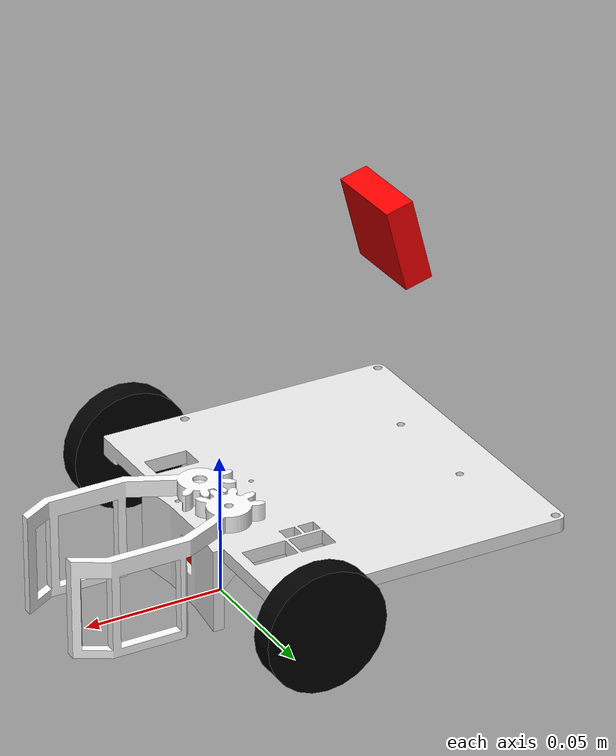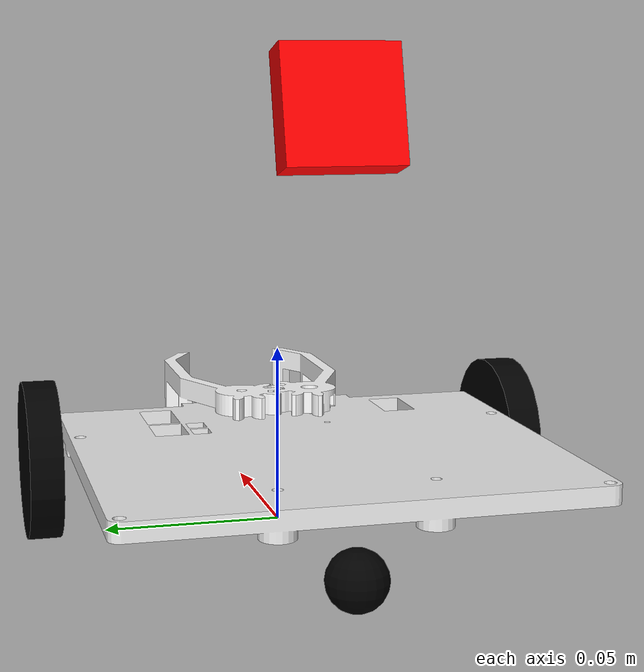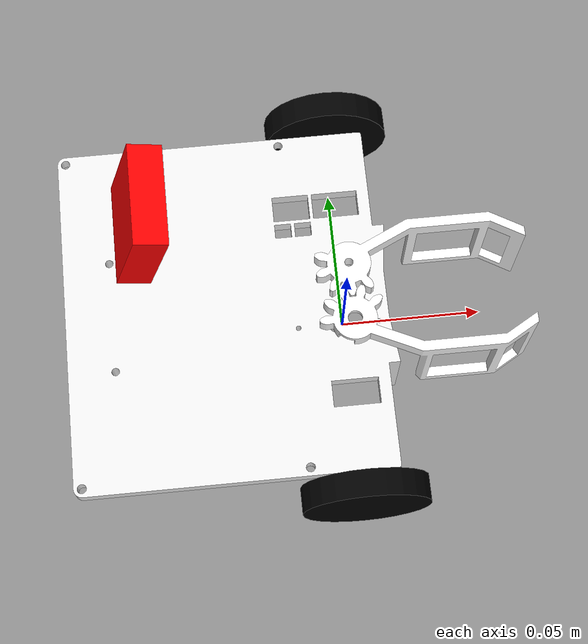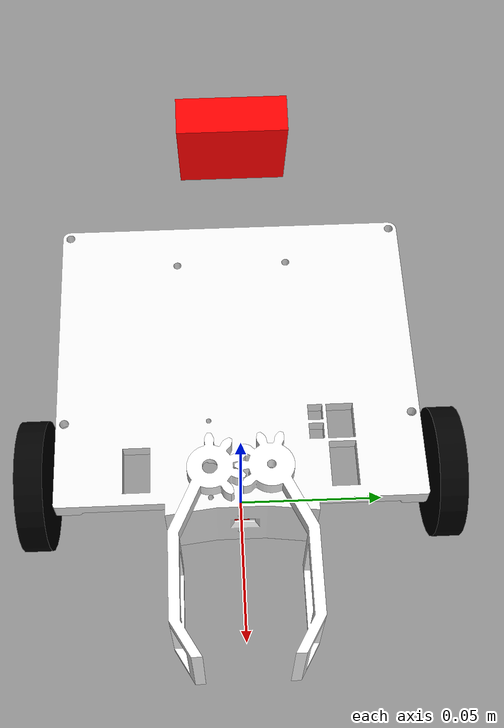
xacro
<?xml version="1.0"?>
<robot xmlns:xacro="http://www.ros.org/wiki/xacro">

    <xacro:include filename="inertial_macros.xacro"/>

    <material name="white">
        <color rgba="1 1 1 1" />
    </material>

    <material name="black">
        <color rgba="0 0 0 1" />
    </material>

    <material name="red">
        <color rgba="1 0 0 1"/>
    </material>

    <link name="base_link">

    </link>

    <joint name="chassis_joint" type="fixed">
        <parent link="base_link" />
        <child link="chassis" />
        <origin xyz="0 0 0" />
    </joint>

    <link name="chassis">
        <visual>
            <geometry>
                <mesh filename="$(find mek_lilrobot)/description/mek_chassis.stl"/>
            </geometry>
        </visual>
        <collision>
            <geometry>
                <mesh filename="$(find mek_lilrobot)/description/mek_chassis_collision.stl"/>
            </geometry>
        </collision>
        <xacro:inertial_box mass="0.8" x="0.1222" y="0.10825" z="0.005">
            <origin xyz="-0.042 0 0.027" rpy="0 0 0" />
        </xacro:inertial_box>
    </link>

    <gazebo reference="chassis">
        <material>Gazebo/White</material>
    </gazebo>

    <joint name="right_wheel_joint" type="continuous">
        <parent link="base_link" />
        <child link="right_wheel" />
        <origin rpy="1.570796 0 0" xyz="0 -0.0675 0.02175" />
        <axis xyz="0 0 -1" />
    </joint>

    <link name="right_wheel">
        <visual>
            <geometry>
                <cylinder radius="0.02175" length="0.009"/>
            </geometry>
            <material name="black"/>
        </visual>
        <collision>
            <geometry>
                <sphere radius="0.02175"/>
            </geometry>
            <surface>
                <contact>
                    <ode>
                        <kp>1e15</kp>
                        <kd>1e13</kd>
                    </ode>
                </contact>
            </surface>
        </collision>
        <xacro:inertial_cylinder mass="0.5" radius="0.02175" length="0.009">
            <origin xyz="0 0 0" rpy="0 0 0"/>
        </xacro:inertial_cylinder>
    </link>

    <gazebo reference="right_wheel">
        <material>Gazebo/Black</material>
        <mu1 value="0.8"/>
        <mu2 value="0.8"/>
    </gazebo>

    <joint name="left_wheel_joint" type="continuous">
        <parent link="base_link" />
        <child link="left_wheel" />
        <origin rpy="-1.570796 0 0" xyz="0 0.0675 0.02175" />
        <axis xyz="0 0 1" />
    </joint>

    <link name="left_wheel">
        <visual>
            <geometry>
                <cylinder radius="0.02175" length="0.009"/>
            </geometry>
            <material name="black"/>
        </visual>
        <collision>
            <geometry>
                <sphere radius="0.02175"/>
            </geometry>
            <surface>
                <contact>
                    <ode>
                        <kp>1e15</kp>
                        <kd>1e13</kd>
                    </ode>
                </contact>
            </surface>
        </collision>
        <xacro:inertial_cylinder mass="0.5" radius="0.02175" length="0.009">
            <origin xyz="0 0 0" rpy="0 0 0"/>
        </xacro:inertial_cylinder>

    </link>

    <gazebo reference="left_wheel">
        <material>Gazebo/Black</material>
        <mu1 value="0.8"/>
        <mu2 value="0.8"/>
    </gazebo>

    <joint name="caster_wheel_joint" type="fixed">
        <parent link="base_link"/>
        <child link="caster_wheel"/>
        <origin xyz="-0.080 0 0.008"/>
    </joint>

    <link name="caster_wheel">
        <visual>
            <geometry>
                <sphere radius="0.008"/>
            </geometry>
            <material name="black"/>
        </visual>
        <collision>
            <geometry>
                <sphere radius="0.008"/>
            </geometry>
        </collision>
        <xacro:inertial_sphere mass="0.01" radius="0.008">
            <origin xyz="0 0 0" rpy="0 0 0"/>
        </xacro:inertial_sphere>
    </link>

    <gazebo reference="caster_wheel">
        <material>Gazebo/Black</material>
        <mu1 value="0.001"/>
        <mu2 value="0.001"/>
    </gazebo>

    <joint name="camera_joint" type="fixed">
        <parent link="base_link"/>
        <child link="camera_link"/>
        <origin xyz="-0.062 0 0.119" rpy="0 0.26 0"/>
    </joint>

    <link name="camera_link">
        <visual>
            <geometry>
                <box size="0.010 0.03 0.03"/>
            </geometry>
            <material name="red"/>
        </visual>
    </link>

    <gazebo reference="camera_link">
        <material>Gazebo/Red</material>
        <sensor name="camera" type="camera">
            <pose> 0 0 0 0 0 0 </pose>
            <visualize>true</visualize>
            <update_rate>10</update_rate>
            <camera>
                <horizontal_fov>0.942</horizontal_fov>
                <image>
                    <format>R8G8B8</format>
                    <width>640</width>
                    <height>480</height>
                </image>
                <clip>
                    <near>0.05</near>
                    <far>8.0</far>
                </clip>
            </camera>
            <plugin name="camera_controller" filename="libgazebo_ros_camera.so">
                <frame_name>camera_link_optical</frame_name>
            </plugin>
        </sensor>
    </gazebo>

    <joint name="camera_optical_joint" type="fixed">
        <origin xyz="0 0 0" rpy="${-pi/2} 0 ${-pi/2}" />
        <parent link="camera_link" />
        <child link="camera_link_optical" />
    </joint>

    <link name="camera_link_optical"></link>

    <joint name="laser_joint" type="fixed">
        <parent link="base_link"/>
        <child link="laser_link"/>
        <origin xyz="0.011 0.00 0.01675" rpy="0 0 0"/>
    </joint>

    <link name="laser_link">
        <visual>
            <geometry>
                <box size="0.002 0.005 0.005"/>
            </geometry>
            <material name="red"/>
        </visual>
    </link>

    <gazebo reference="laser_link">
        <material>Gazebo/Red</material>
        <selfCollide>0</selfCollide>
        <sensor type="ray" name="laser_link">
            <pose>0.0025 0 0 0 0 0</pose>
            <visualize>true</visualize>
            <update_rate>10</update_rate>
            <ray>
                <scan>
                    <horizontal>
                        <samples>3</samples>
                        <resolution>1</resolution>
                        <min_angle>-0.12</min_angle>
                        <max_angle>0.12</max_angle>
                    </horizontal>
                    <vertical>
                        <samples>1</samples>
                        <resolution>1</resolution>
                        <min_angle>0.0</min_angle>
                        <max_angle>0.0</max_angle>
                    </vertical>
                </scan>
                <range>
                    <min>0.001</min>
                    <max>0.2</max>
                    <resolution>0.001</resolution>
                </range>
            </ray>
            <update_rate>10</update_rate>
            <plugin name="gazebo_ros_range_controller" filename="libgazebo_ros_ray_sensor.so">
                <ros>
                    <remapping>~/out:=laser</remapping>
                </ros>
                <output_type>sensor_msgs/Range</output_type>
                <frame_name>laser_link</frame_name>
            </plugin>
        </sensor>
    </gazebo>

    <!-- Gripper -->
    <link name="gripper_right_link">
        <visual>
            <geometry>
                <mesh filename="$(find mek_lilrobot)/description/gripper_right_visual.stl"/>
            </geometry>
            <material name="white"/>
        </visual>
        <collision>
            <geometry>
                <mesh filename="$(find mek_lilrobot)/description/gripper_right_collision.stl"/>
            </geometry>
        </collision>
        <xacro:inertial_box mass="0.05" x="0.04" y="0.005" z="0.03">
            <origin xyz="0.020 0 -0.015" rpy="0 0 0"/>
        </xacro:inertial_box>
    </link>

    <joint type="revolute" name="gripper_right_joint">
        <parent link="base_link"/>
        <child link="gripper_right_link"/>
        <origin xyz="0.0021 -0.010 0.03175" rpy="0 0 0"/>
        <axis xyz="0 0 1"/>
        <limit effort="1" velocity="1" lower="-0.74" upper="0.219"/>
    </joint>

    <link name="gripper_left_link">
        <visual>
            <geometry>
                <mesh filename="$(find mek_lilrobot)/description/gripper_left_visual.stl"/>
            </geometry>
            <material name="white"/>
        </visual>
        <collision>
            <geometry>
                <mesh filename="$(find mek_lilrobot)/description/gripper_left_collision.stl"/>
            </geometry>
        </collision>
        <xacro:inertial_box mass="0.05" x="0.04" y="0.005" z="0.03">
            <origin xyz="0.020 0 0.015" rpy="0 0 0"/>
        </xacro:inertial_box>
    </link>

    <joint type="revolute" name="gripper_left_joint">
        <parent link="base_link"/>
        <child link="gripper_left_link"/>
        <origin xyz="0.0021 0.010 0.03175" rpy="${pi} 0 0"/>
        <axis xyz="0 0 -1"/>
        <limit effort="1" velocity="1" lower="-0.219" upper="0.74"/>
    </joint>

    <gazebo reference="gripper_right_link">
        <self_collide>1</self_collide>
    </gazebo>

    <gazebo reference="gripper_left_link">
        <self_collide>1</self_collide>
    </gazebo>

</robot>
